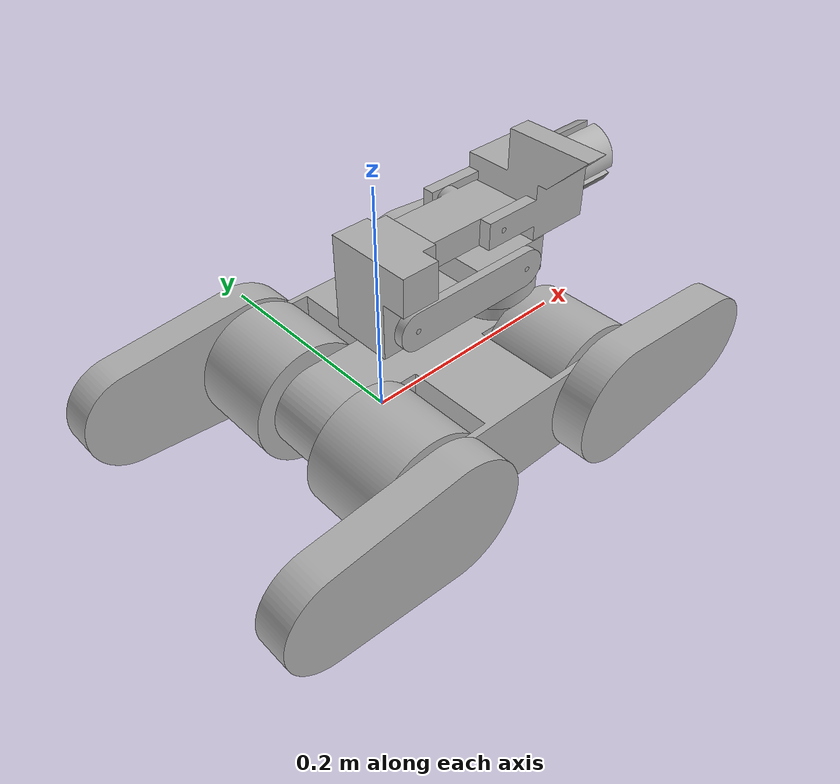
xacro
<?xml version="1.0" ?>
<robot name="URDF_DIRECCION_X" xmlns:xacro="http://www.ros.org/wiki/xacro">

<xacro:include filename="materials.xacro" />
<xacro:include filename="URDF_DIRECCION_X.trans" />
<xacro:include filename="URDF_DIRECCION_X.gazebo" />
<xacro:include filename="ros2_control.xacro" />

<link name="base_link">
  <inertial>
    <origin xyz="0.0015670288303076142 -0.04921817269007369 0.06681838893831736" rpy="0 0 0"/>
    <mass value="12.327465009702763"/>
    <inertia ixx="0.035971" iyy="0.036951" izz="0.063219" ixy="2.2e-05" iyz="1.1e-05" ixz="-0.000722"/>
  </inertial>
  <visual>
    <origin xyz="0 0 0" rpy="0 0 0"/>
    <geometry>
      <mesh filename="package://cloud_robot/urdf/meshes/base_link.stl" scale="0.001 0.001 0.001"/>
    </geometry>
    <material name="silver"/>
  </visual>
  <collision>
    <origin xyz="0 0 0" rpy="0 0 0"/>
    <geometry>
      <mesh filename="package://cloud_robot/urdf/meshes/base_link.stl" scale="0.001 0.001 0.001"/>
    </geometry>
  </collision>
</link>

<link name="Left_Front_Wheel_1">
  <inertial>
    <origin xyz="2.352961450818869e-07 0.03328000000000002 -5.551115123125783e-17" rpy="0 0 0"/>
    <mass value="3.8165954525863826"/>
    <inertia ixx="0.003628" iyy="0.004437" izz="0.003628" ixy="-0.0" iyz="-0.0" ixz="0.0"/>
  </inertial>
  <visual>
    <origin xyz="-0.080518 0.02156 -0.066" rpy="0 0 0"/>
    <geometry>
      <mesh filename="package://cloud_robot/urdf/meshes/Left_Front_Wheel_1.stl" scale="0.001 0.001 0.001"/>
    </geometry>
    <material name="silver"/>
  </visual>
  <collision>
    <origin xyz="-0.080518 0.02156 -0.066" rpy="0 0 0"/>
    <geometry>
      <mesh filename="package://cloud_robot/urdf/meshes/Left_Front_Wheel_1.stl" scale="0.001 0.001 0.001"/>
    </geometry>
  </collision>
</link>

<link name="Right_Front_Wheel_1">
  <inertial>
    <origin xyz="-9.514703854879292e-06 -0.03327999999999999 4.163336342344337e-17" rpy="0 0 0"/>
    <mass value="3.8165954525863826"/>
    <inertia ixx="0.003628" iyy="0.004437" izz="0.003628" ixy="0.0" iyz="-0.0" ixz="0.0"/>
  </inertial>
  <visual>
    <origin xyz="-0.080518 0.076826 -0.066" rpy="0 0 0"/>
    <geometry>
      <mesh filename="package://cloud_robot/urdf/meshes/Right_Front_Wheel_1.stl" scale="0.001 0.001 0.001"/>
    </geometry>
    <material name="silver"/>
  </visual>
  <collision>
    <origin xyz="-0.080518 0.076826 -0.066" rpy="0 0 0"/>
    <geometry>
      <mesh filename="package://cloud_robot/urdf/meshes/Right_Front_Wheel_1.stl" scale="0.001 0.001 0.001"/>
    </geometry>
  </collision>
</link>

<link name="Left_Rear_Wheel_1">
  <inertial>
    <origin xyz="-2.352961450818869e-07 0.033280000000000025 1.3877787807814457e-17" rpy="0 0 0"/>
    <mass value="3.8165954525863808"/>
    <inertia ixx="0.003628" iyy="0.004437" izz="0.003628" ixy="-0.0" iyz="0.0" ixz="-0.0"/>
  </inertial>
  <visual>
    <origin xyz="0.080518 0.02156 -0.066" rpy="0 0 0"/>
    <geometry>
      <mesh filename="package://cloud_robot/urdf/meshes/Left_Rear_Wheel_1.stl" scale="0.001 0.001 0.001"/>
    </geometry>
    <material name="silver"/>
  </visual>
  <collision>
    <origin xyz="0.080518 0.02156 -0.066" rpy="0 0 0"/>
    <geometry>
      <mesh filename="package://cloud_robot/urdf/meshes/Left_Rear_Wheel_1.stl" scale="0.001 0.001 0.001"/>
    </geometry>
  </collision>
</link>

<link name="Right_Rear_Wheel_1">
  <inertial>
    <origin xyz="9.514703854976436e-06 -0.03327999999999996 2.7755575615628914e-17" rpy="0 0 0"/>
    <mass value="3.8165954525863817"/>
    <inertia ixx="0.003628" iyy="0.004437" izz="0.003628" ixy="-0.0" iyz="-0.0" ixz="-0.0"/>
  </inertial>
  <visual>
    <origin xyz="0.080518 0.076826 -0.066" rpy="0 0 0"/>
    <geometry>
      <mesh filename="package://cloud_robot/urdf/meshes/Right_Rear_Wheel_1.stl" scale="0.001 0.001 0.001"/>
    </geometry>
    <material name="silver"/>
  </visual>
  <collision>
    <origin xyz="0.080518 0.076826 -0.066" rpy="0 0 0"/>
    <geometry>
      <mesh filename="package://cloud_robot/urdf/meshes/Right_Rear_Wheel_1.stl" scale="0.001 0.001 0.001"/>
    </geometry>
  </collision>
</link>

<link name="Left_Front_Fliper_1">
  <inertial>
    <origin xyz="0.0427356266996195 0.01335 -1.3877787807814457e-17" rpy="0 0 0"/>
    <mass value="3.12464418597158"/>
    <inertia ixx="0.002035" iyy="0.009493" izz="0.007829" ixy="0.0" iyz="0.0" ixz="-0.0"/>
  </inertial>
  <visual>
    <origin xyz="-0.080518 -0.05 -0.066" rpy="0 0 0"/>
    <geometry>
      <mesh filename="package://cloud_robot/urdf/meshes/Left_Front_Fliper_1.stl" scale="0.001 0.001 0.001"/>
    </geometry>
    <material name="silver"/>
  </visual>
  <collision>
    <origin xyz="-0.080518 -0.05 -0.066" rpy="0 0 0"/>
    <geometry>
      <mesh filename="package://cloud_robot/urdf/meshes/Left_Front_Fliper_1.stl" scale="0.001 0.001 0.001"/>
    </geometry>
  </collision>
</link>

<link name="Right_Front_Fliper_1">
  <inertial>
    <origin xyz="0.04273562669961954 -0.013349999999999945 0.0" rpy="0 0 0"/>
    <mass value="3.12464418597158"/>
    <inertia ixx="0.002035" iyy="0.009493" izz="0.007829" ixy="-0.0" iyz="-0.0" ixz="0.0"/>
  </inertial>
  <visual>
    <origin xyz="-0.080518 0.148386 -0.066" rpy="0 0 0"/>
    <geometry>
      <mesh filename="package://cloud_robot/urdf/meshes/Right_Front_Fliper_1.stl" scale="0.001 0.001 0.001"/>
    </geometry>
    <material name="silver"/>
  </visual>
  <collision>
    <origin xyz="-0.080518 0.148386 -0.066" rpy="0 0 0"/>
    <geometry>
      <mesh filename="package://cloud_robot/urdf/meshes/Right_Front_Fliper_1.stl" scale="0.001 0.001 0.001"/>
    </geometry>
  </collision>
</link>

<link name="Right_Rear_Fliper_1">
  <inertial>
    <origin xyz="-0.04273562669961954 -0.013349999999999945 0.0" rpy="0 0 0"/>
    <mass value="3.1246441859715794"/>
    <inertia ixx="0.002035" iyy="0.009493" izz="0.007829" ixy="0.0" iyz="-0.0" ixz="0.0"/>
  </inertial>
  <visual>
    <origin xyz="0.080518 0.148386 -0.066" rpy="0 0 0"/>
    <geometry>
      <mesh filename="package://cloud_robot/urdf/meshes/Right_Rear_Fliper_1.stl" scale="0.001 0.001 0.001"/>
    </geometry>
    <material name="silver"/>
  </visual>
  <collision>
    <origin xyz="0.080518 0.148386 -0.066" rpy="0 0 0"/>
    <geometry>
      <mesh filename="package://cloud_robot/urdf/meshes/Right_Rear_Fliper_1.stl" scale="0.001 0.001 0.001"/>
    </geometry>
  </collision>
</link>

<link name="Left_Rear_Fliper_1">
  <inertial>
    <origin xyz="-0.04273562669961961 0.01335 -1.3877787807814457e-17" rpy="0 0 0"/>
    <mass value="3.12464418597158"/>
    <inertia ixx="0.002035" iyy="0.009493" izz="0.007829" ixy="-0.0" iyz="0.0" ixz="0.0"/>
  </inertial>
  <visual>
    <origin xyz="0.080518 -0.05 -0.066" rpy="0 0 0"/>
    <geometry>
      <mesh filename="package://cloud_robot/urdf/meshes/Left_Rear_Fliper_1.stl" scale="0.001 0.001 0.001"/>
    </geometry>
    <material name="silver"/>
  </visual>
  <collision>
    <origin xyz="0.080518 -0.05 -0.066" rpy="0 0 0"/>
    <geometry>
      <mesh filename="package://cloud_robot/urdf/meshes/Left_Rear_Fliper_1.stl" scale="0.001 0.001 0.001"/>
    </geometry>
  </collision>
</link>

<link name="Joint_1_1">
  <inertial>
    <origin xyz="-0.006593053508868241 0.0 0.022539808161214633" rpy="0 0 0"/>
    <mass value="1.0976175500874272"/>
    <inertia ixx="0.000407" iyy="0.000564" izz="0.000615" ixy="-0.0" iyz="-0.0" ixz="5.2e-05"/>
  </inertial>
  <visual>
    <origin xyz="-0.071976 0.05 -0.11" rpy="0 0 0"/>
    <geometry>
      <mesh filename="package://cloud_robot/urdf/meshes/Joint_1_1.stl" scale="0.001 0.001 0.001"/>
    </geometry>
    <material name="silver"/>
  </visual>
  <collision>
    <origin xyz="-0.071976 0.05 -0.11" rpy="0 0 0"/>
    <geometry>
      <mesh filename="package://cloud_robot/urdf/meshes/Joint_1_1.stl" scale="0.001 0.001 0.001"/>
    </geometry>
  </collision>
</link>

<link name="Joint_Bridge_1_1">
  <inertial>
    <origin xyz="-0.05249999999988092 -0.0035000000000000447 -6.900036098045348e-14" rpy="0 0 0"/>
    <mass value="0.210202311444116"/>
    <inertia ixx="1.6e-05" iyy="0.000305" izz="0.000291" ixy="-0.0" iyz="-0.0" ixz="-0.0"/>
  </inertial>
  <visual>
    <origin xyz="-0.071976 0.074 -0.1397" rpy="0 0 0"/>
    <geometry>
      <mesh filename="package://cloud_robot/urdf/meshes/Joint_Bridge_1_1.stl" scale="0.001 0.001 0.001"/>
    </geometry>
    <material name="silver"/>
  </visual>
  <collision>
    <origin xyz="-0.071976 0.074 -0.1397" rpy="0 0 0"/>
    <geometry>
      <mesh filename="package://cloud_robot/urdf/meshes/Joint_Bridge_1_1.stl" scale="0.001 0.001 0.001"/>
    </geometry>
  </collision>
</link>

<link name="Joint_Bridge_2_1">
  <inertial>
    <origin xyz="-0.052499999999880906 0.0034999999999999996 -6.900036098045348e-14" rpy="0 0 0"/>
    <mass value="0.21020231144411708"/>
    <inertia ixx="1.6e-05" iyy="0.000305" izz="0.000291" ixy="-0.0" iyz="-0.0" ixz="-0.0"/>
  </inertial>
  <visual>
    <origin xyz="-0.071976 0.026 -0.1397" rpy="0 0 0"/>
    <geometry>
      <mesh filename="package://cloud_robot/urdf/meshes/Joint_Bridge_2_1.stl" scale="0.001 0.001 0.001"/>
    </geometry>
    <material name="silver"/>
  </visual>
  <collision>
    <origin xyz="-0.071976 0.026 -0.1397" rpy="0 0 0"/>
    <geometry>
      <mesh filename="package://cloud_robot/urdf/meshes/Joint_Bridge_2_1.stl" scale="0.001 0.001 0.001"/>
    </geometry>
  </collision>
</link>

<link name="Joint_2_1">
  <inertial>
    <origin xyz="0.002188552095745186 -0.026936196874102866 0.019710006862428964" rpy="0 0 0"/>
    <mass value="1.485619849727809"/>
    <inertia ixx="0.001134" iyy="0.001197" izz="0.000861" ixy="-4.9e-05" iyz="0.000108" ixz="0.000208"/>
  </inertial>
  <visual>
    <origin xyz="0.033024 0.026 -0.1397" rpy="0 0 0"/>
    <geometry>
      <mesh filename="package://cloud_robot/urdf/meshes/Joint_2_1.stl" scale="0.001 0.001 0.001"/>
    </geometry>
    <material name="silver"/>
  </visual>
  <collision>
    <origin xyz="0.033024 0.026 -0.1397" rpy="0 0 0"/>
    <geometry>
      <mesh filename="package://cloud_robot/urdf/meshes/Joint_2_1.stl" scale="0.001 0.001 0.001"/>
    </geometry>
  </collision>
</link>

<link name="Joint_3_1">
  <inertial>
    <origin xyz="0.03958059925091924 -0.0018254040488058856 0.0015011932395808947" rpy="0 0 0"/>
    <mass value="0.4960244910392703"/>
    <inertia ixx="8.6e-05" iyy="0.000262" izz="0.000314" ixy="-7e-06" iyz="-0.0" ixz="0.0"/>
  </inertial>
  <visual>
    <origin xyz="0.011524 0.05 -0.182601" rpy="0 0 0"/>
    <geometry>
      <mesh filename="package://cloud_robot/urdf/meshes/Joint_3_1.stl" scale="0.001 0.001 0.001"/>
    </geometry>
    <material name="silver"/>
  </visual>
  <collision>
    <origin xyz="0.011524 0.05 -0.182601" rpy="0 0 0"/>
    <geometry>
      <mesh filename="package://cloud_robot/urdf/meshes/Joint_3_1.stl" scale="0.001 0.001 0.001"/>
    </geometry>
  </collision>
</link>

<link name="Joint_4_1">
  <inertial>
    <origin xyz="0.05000371523751193 -0.027489382051494465 0.005784664192359679" rpy="0 0 0"/>
    <mass value="1.4697917423427727"/>
    <inertia ixx="0.0012" iyy="0.001045" izz="0.001279" ixy="-6.8e-05" iyz="0.000232" ixz="8.6e-05"/>
  </inertial>
  <visual>
    <origin xyz="-0.044325 0.026 -0.184101" rpy="0 0 0"/>
    <geometry>
      <mesh filename="package://cloud_robot/urdf/meshes/Joint_4_1.stl" scale="0.001 0.001 0.001"/>
    </geometry>
    <material name="silver"/>
  </visual>
  <collision>
    <origin xyz="-0.044325 0.026 -0.184101" rpy="0 0 0"/>
    <geometry>
      <mesh filename="package://cloud_robot/urdf/meshes/Joint_4_1.stl" scale="0.001 0.001 0.001"/>
    </geometry>
  </collision>
</link>

<link name="Joint_5_1">
  <inertial>
    <origin xyz="0.020879748229569783 0.00010384952783171197 -0.0002501826103843696" rpy="0 0 0"/>
    <mass value="0.48661437832818993"/>
    <inertia ixx="0.000151" iyy="0.000155" izz="0.000152" ixy="-0.0" iyz="-1e-06" ixz="0.0"/>
  </inertial>
  <visual>
    <origin xyz="-0.126526 0.048913 -0.185271" rpy="0 0 0"/>
    <geometry>
      <mesh filename="package://cloud_robot/urdf/meshes/Joint_5_1.stl" scale="0.001 0.001 0.001"/>
    </geometry>
    <material name="silver"/>
  </visual>
  <collision>
    <origin xyz="-0.126526 0.048913 -0.185271" rpy="0 0 0"/>
    <geometry>
      <mesh filename="package://cloud_robot/urdf/meshes/Joint_5_1.stl" scale="0.001 0.001 0.001"/>
    </geometry>
  </collision>
</link>

<joint name="Revolucion_1" type="continuous">
  <origin xyz="0.080518 -0.02156 0.066" rpy="0 0 0"/>
  <parent link="base_link"/>
  <child link="Left_Front_Wheel_1"/>
  <axis xyz="0.0 1.0 0.0"/>
</joint>

<joint name="Revolucion_2" type="continuous">
  <origin xyz="0.080518 -0.076826 0.066" rpy="0 0 0"/>
  <parent link="base_link"/>
  <child link="Right_Front_Wheel_1"/>
  <axis xyz="0.0 -1.0 0.0"/>
</joint>

<joint name="Revolucion_3" type="continuous">
  <origin xyz="-0.080518 -0.02156 0.066" rpy="0 0 0"/>
  <parent link="base_link"/>
  <child link="Left_Rear_Wheel_1"/>
  <axis xyz="0.0 1.0 0.0"/>
</joint>

<joint name="Revolucion_4" type="continuous">
  <origin xyz="-0.080518 -0.076826 0.066" rpy="0 0 0"/>
  <parent link="base_link"/>
  <child link="Right_Rear_Wheel_1"/>
  <axis xyz="0.0 -1.0 0.0"/>
</joint>

<joint name="Revolucion_5" type="continuous">
  <origin xyz="0.080518 0.05 0.066" rpy="0 0 0"/>
  <parent link="base_link"/>
  <child link="Left_Front_Fliper_1"/>
  <axis xyz="0.0 1.0 0.0"/>
</joint>

<joint name="Revolucion_6" type="continuous">
  <origin xyz="0.080518 -0.148386 0.066" rpy="0 0 0"/>
  <parent link="base_link"/>
  <child link="Right_Front_Fliper_1"/>
  <axis xyz="0.0 -1.0 0.0"/>
</joint>

<joint name="Revolucion_7" type="continuous">
  <origin xyz="-0.080518 -0.148386 0.066" rpy="0 0 0"/>
  <parent link="base_link"/>
  <child link="Right_Rear_Fliper_1"/>
  <axis xyz="0.0 -1.0 0.0"/>
</joint>

<joint name="Revolucion_8" type="continuous">
  <origin xyz="-0.080518 0.05 0.066" rpy="0 0 0"/>
  <parent link="base_link"/>
  <child link="Left_Rear_Fliper_1"/>
  <axis xyz="0.0 1.0 0.0"/>
</joint>

<joint name="Revolucion_9" type="continuous">
  <origin xyz="0.071976 -0.05 0.11" rpy="0 0 0"/>
  <parent link="base_link"/>
  <child link="Joint_1_1"/>
  <axis xyz="0.0 -0.0 -1.0"/>
</joint>

<joint name="Revolucion_10" type="continuous">
  <origin xyz="0.0 -0.024 0.0297" rpy="0 0 0"/>
  <parent link="Joint_1_1"/>
  <child link="Joint_Bridge_1_1"/>
  <axis xyz="0.0 1.0 -0.0"/>
</joint>

<joint name="Revolucion_11" type="continuous">
  <origin xyz="0.0 0.024 0.0297" rpy="0 0 0"/>
  <parent link="Joint_1_1"/>
  <child link="Joint_Bridge_2_1"/>
  <axis xyz="0.0 -1.0 0.0"/>
</joint>

<joint name="Revolucion_12" type="continuous">
  <origin xyz="-0.105 0.0 0.0" rpy="0 0 0"/>
  <parent link="Joint_Bridge_2_1"/>
  <child link="Joint_2_1"/>
  <axis xyz="0.0 1.0 -0.0"/>
</joint>

<joint name="Revolucion_13" type="continuous">
  <origin xyz="0.0215 -0.024 0.042901" rpy="0 0 0"/>
  <parent link="Joint_2_1"/>
  <child link="Joint_3_1"/>
  <axis xyz="-1.0 0.0 0.0"/>
</joint>

<joint name="Revolucion_14" type="continuous">
  <origin xyz="0.055849 0.024 0.0015" rpy="0 0 0"/>
  <parent link="Joint_3_1"/>
  <child link="Joint_4_1"/>
  <axis xyz="0.0 -1.0 0.0"/>
</joint>

<joint name="Revolucion_15" type="continuous">
  <origin xyz="0.082201 -0.022913 0.00117" rpy="0 0 0"/>
  <parent link="Joint_4_1"/>
  <child link="Joint_5_1"/>
  <axis xyz="-1.0 0.0 0.0"/>
</joint>

</robot>

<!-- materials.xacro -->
<robot name="URDF_DIRECCION_X" xmlns:xacro="http://www.ros.org/wiki/xacro" >

<material name="silver">
  <color rgba="0.700 0.700 0.700 1.000"/>
</material>

</robot>

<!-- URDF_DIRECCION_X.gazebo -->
<robot name="URDF_DIRECCION_X" xmlns:xacro="http://www.ros.org/wiki/xacro" >

<xacro:property name="body_color" value="Gazebo/Silver" />

<gazebo>
  <plugin name="control" filename="libgazebo_ros_control.so"/>
</gazebo>
<gazebo reference="base_link">
  <material>${body_color}</material>
  <mu1>0.2</mu1>
  <mu2>0.2</mu2>
  <selfCollide>true</selfCollide>
  <gravity>true</gravity>
</gazebo>

<gazebo reference="Left_Front_Wheel_1">
  <material>${body_color}</material>
  <mu1>0.2</mu1>
  <mu2>0.2</mu2>
  <selfCollide>true</selfCollide>
</gazebo>

<gazebo reference="Right_Front_Wheel_1">
  <material>${body_color}</material>
  <mu1>0.2</mu1>
  <mu2>0.2</mu2>
  <selfCollide>true</selfCollide>
</gazebo>

<gazebo reference="Left_Rear_Wheel_1">
  <material>${body_color}</material>
  <mu1>0.2</mu1>
  <mu2>0.2</mu2>
  <selfCollide>true</selfCollide>
</gazebo>

<gazebo reference="Right_Rear_Wheel_1">
  <material>${body_color}</material>
  <mu1>0.2</mu1>
  <mu2>0.2</mu2>
  <selfCollide>true</selfCollide>
</gazebo>

<gazebo reference="Left_Front_Fliper_1">
  <material>${body_color}</material>
  <mu1>0.2</mu1>
  <mu2>0.2</mu2>
  <selfCollide>true</selfCollide>
</gazebo>

<gazebo reference="Right_Front_Fliper_1">
  <material>${body_color}</material>
  <mu1>0.2</mu1>
  <mu2>0.2</mu2>
  <selfCollide>true</selfCollide>
</gazebo>

<gazebo reference="Right_Rear_Fliper_1">
  <material>${body_color}</material>
  <mu1>0.2</mu1>
  <mu2>0.2</mu2>
  <selfCollide>true</selfCollide>
</gazebo>

<gazebo reference="Left_Rear_Fliper_1">
  <material>${body_color}</material>
  <mu1>0.2</mu1>
  <mu2>0.2</mu2>
  <selfCollide>true</selfCollide>
</gazebo>

<gazebo reference="Joint_1_1">
  <material>${body_color}</material>
  <mu1>0.2</mu1>
  <mu2>0.2</mu2>
  <selfCollide>true</selfCollide>
</gazebo>

<gazebo reference="Joint_Bridge_1_1">
  <material>${body_color}</material>
  <mu1>0.2</mu1>
  <mu2>0.2</mu2>
  <selfCollide>true</selfCollide>
</gazebo>

<gazebo reference="Joint_Bridge_2_1">
  <material>${body_color}</material>
  <mu1>0.2</mu1>
  <mu2>0.2</mu2>
  <selfCollide>true</selfCollide>
</gazebo>

<gazebo reference="Joint_2_1">
  <material>${body_color}</material>
  <mu1>0.2</mu1>
  <mu2>0.2</mu2>
  <selfCollide>true</selfCollide>
</gazebo>

<gazebo reference="Joint_3_1">
  <material>${body_color}</material>
  <mu1>0.2</mu1>
  <mu2>0.2</mu2>
  <selfCollide>true</selfCollide>
</gazebo>

<gazebo reference="Joint_4_1">
  <material>${body_color}</material>
  <mu1>0.2</mu1>
  <mu2>0.2</mu2>
  <selfCollide>true</selfCollide>
</gazebo>

<gazebo reference="Joint_5_1">
  <material>${body_color}</material>
  <mu1>0.2</mu1>
  <mu2>0.2</mu2>
  <selfCollide>true</selfCollide>
</gazebo>

</robot>
